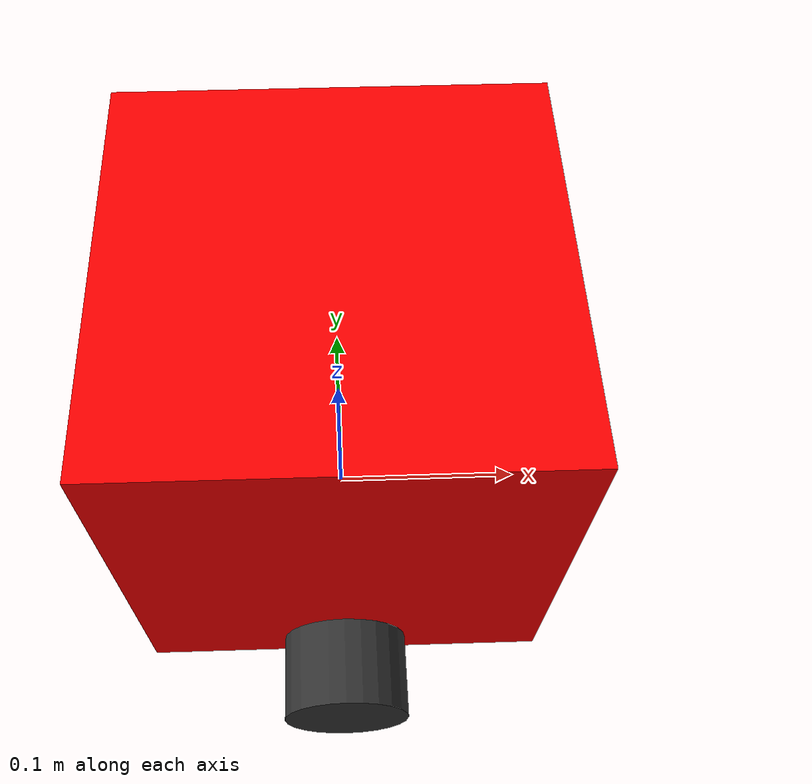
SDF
<?xml version="1.0"?>
<sdf version="1.6">
  <model name="moving_obstacle">
    <pose>0 0 0.1 0 0 0</pose>  <!-- 表示模型坐标系在世界坐标系中的位置和姿态 -->

    <link name="chassis">
      <pose>0 0 0 0 0 0</pose>  <!-- 表示链接坐标系在父链接坐标系（模型坐标系）中的位置和姿态 -->
      <inertial>
        <mass>5.0</mass>
        <inertia>
          <ixx>0.05</ixx>
          <iyy>0.05</iyy>
          <izz>0.05</izz>
        </inertia>
      </inertial>
      <visual name="visual">
        <geometry><box><size>0.2 0.2 0.2</size></box></geometry>
        <material><ambient>1 0 0 1</ambient></material>
      </visual>
      <collision name="collision">
        <geometry><box><size>0.2 0.2 0.2</size></box></geometry>
        <surface><friction><ode><mu>0.001</mu><mu2>0.001</mu2></ode></friction></surface>
      </collision>
    </link>

    <link name="left_wheel">
      <pose>0 0.125 -0.07 1.57079632679 0 0</pose>  <!-- 表示链接坐标系在父链接坐标系（模型坐标系）中的位置和姿态，这里会旋转链接坐标系 -->
      <inertial>
        <mass>0.5</mass>
        <inertia><ixx>0.005</ixx><iyy>0.005</iyy><izz>0.005</izz></inertia>
      </inertial>
      <visual name="visual">
        <geometry><cylinder><radius>0.03</radius><length>0.04</length></cylinder></geometry>
        <material><ambient>0.2 0.2 0.2 1</ambient></material>
      </visual>
      <collision name="collision">
        <geometry><cylinder><radius>0.03</radius><length>0.04</length></cylinder></geometry>
        <surface><friction><ode><mu>1.0</mu><mu2>1.0</mu2></ode></friction></surface>
      </collision>
    </link>

    <link name="right_wheel">
      <pose>0 -0.125 -0.07 1.57079632679 0 0</pose>  <!-- 表示链接坐标系在父链接坐标系（模型坐标系）中的位置和姿态，这里会旋转链接坐标系 -->
      <inertial>
        <mass>0.5</mass>
        <inertia><ixx>0.005</ixx><iyy>0.005</iyy><izz>0.005</izz></inertia>
      </inertial>
      <visual name="visual">
        <geometry><cylinder><radius>0.03</radius><length>0.04</length></cylinder></geometry>
        <material><ambient>0.2 0.2 0.2 1</ambient></material>
      </visual>
      <collision name="collision">
        <geometry><cylinder><radius>0.03</radius><length>0.04</length></cylinder></geometry>
        <surface><friction><ode><mu>1.0</mu><mu2>1.0</mu2></ode></friction></surface>
      </collision>
    </link>

    <!-- 关节定义 - 标准格式 -->
    <joint name="left_wheel_joint" type="revolute">
      <parent>chassis</parent>
      <child>left_wheel</child>
      <axis><xyz>0 0 -1</xyz></axis>  <!-- 表示关节轴在当前坐标系（链接坐标系轮子）中的方向，因为前面旋转了这里是-z轴 -->
      <limit><lower>-1e16</lower><upper>1e16</upper></limit>
      <dynamics><damping>10</damping><friction>1</friction></dynamics>
    </joint>

    <joint name="right_wheel_joint" type="revolute">
      <parent>chassis</parent>
      <child>right_wheel</child>
      <axis><xyz>0 0 -1</xyz></axis>  <!-- 表示关节轴在当前坐标系（链接坐标系轮子）中的方向，因为前面旋转了这里是-z轴 -->
      <limit><lower>-1e16</lower><upper>1e16</upper></limit>
      <dynamics><damping>10</damping><friction>1</friction></dynamics>
    </joint>

    <!-- 插件配置 -->
    <plugin name="diff_drive" filename="libgazebo_ros_diff_drive.so">
      <ros><namespace>/moving_obstacle</namespace></ros>
      <left_joint>left_wheel_joint</left_joint>
      <right_joint>right_wheel_joint</right_joint>
      <wheel_separation>0.25</wheel_separation>
      <wheel_diameter>0.06</wheel_diameter>
      <max_wheel_torque>10</max_wheel_torque>
      <max_wheel_acceleration>1.0</max_wheel_acceleration>
      <command_topic>cmd_vel</command_topic>
      <odometry_topic>odom</odometry_topic>
      <odometry_frame>odom</odometry_frame>
      <robot_base_frame>chassis</robot_base_frame>
      <publish_odom>true</publish_odom>
      <publish_odom_tf>false</publish_odom_tf>
    </plugin>
  </model>
</sdf>
